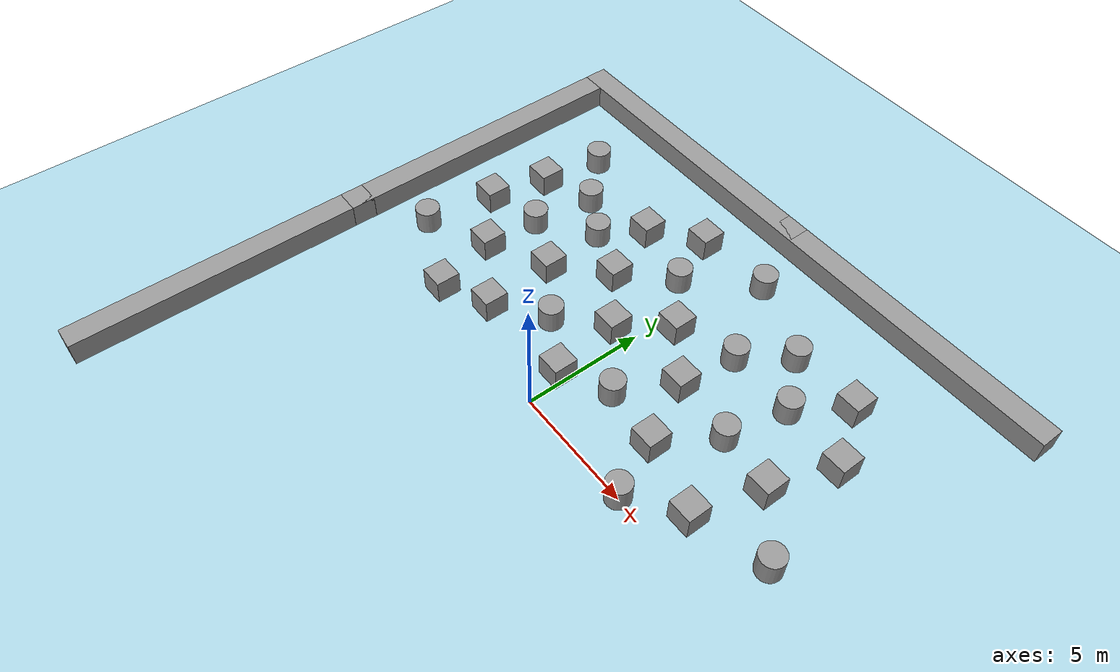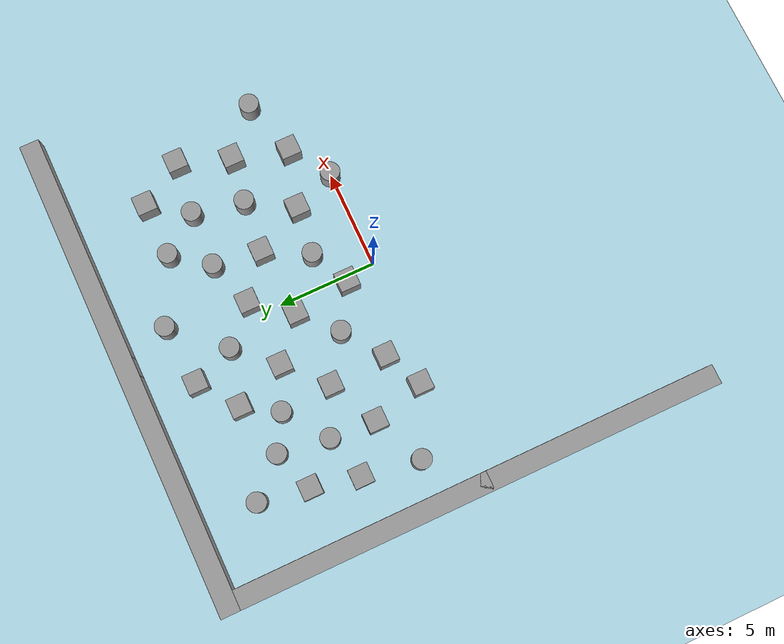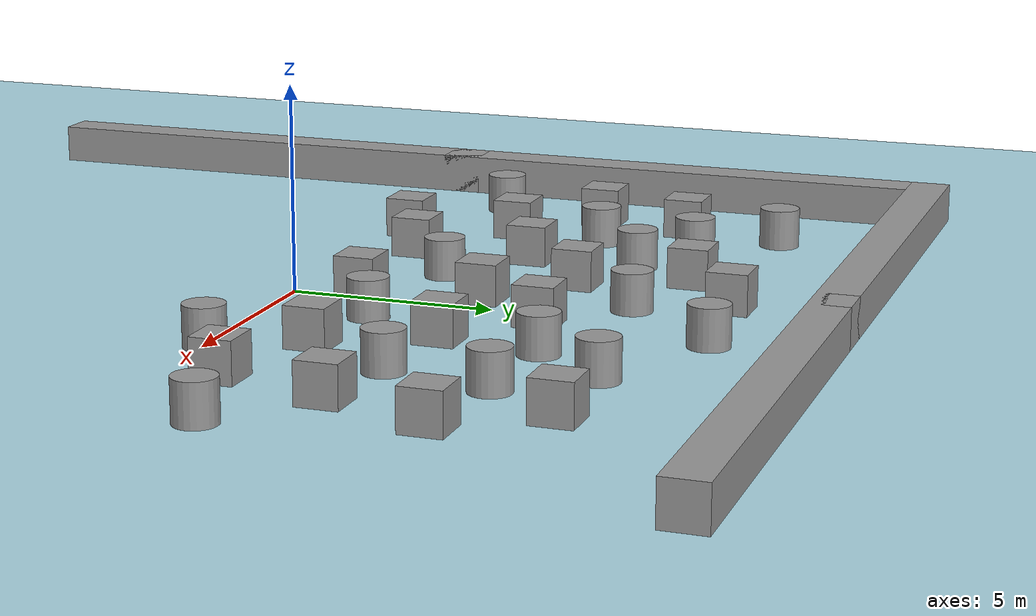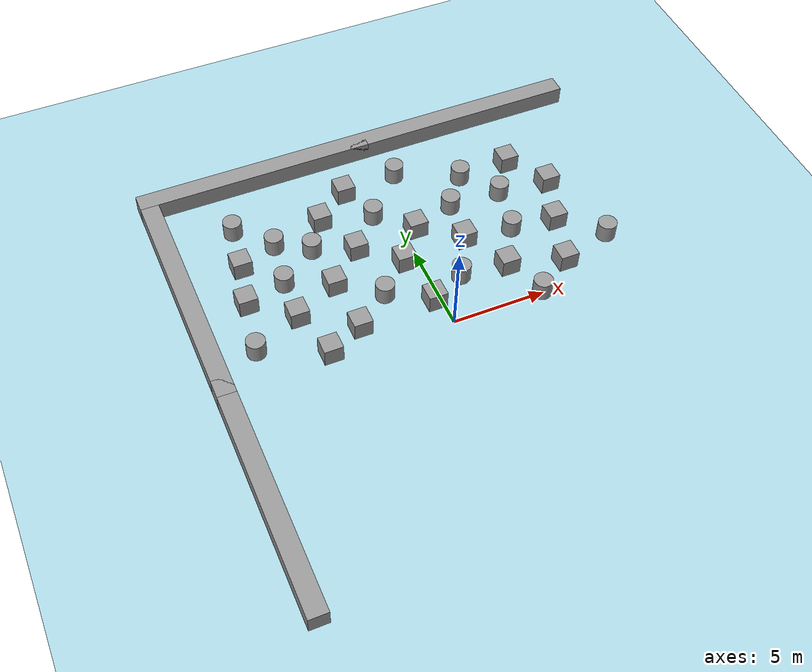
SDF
<sdf version="1.6">
 <world name="default">
  <model name="ground_plane">
   <static>1</static>
   <link name="link">
    <collision name="collision">
     <geometry><plane><normal>0 0 1</normal><size>100 100</size></plane></geometry>
     <surface><friction><ode><mu>100</mu><mu2>50</mu2></ode></friction></surface>
    </collision>
    <visual name="visual">
     <cast_shadows>0</cast_shadows>
     <geometry><plane><normal>0 0 1</normal><size>100 100</size></plane></geometry>
     <material>
      <script><name>Gazebo/Grey</name><uri>file://media/materials/scripts/gazebo.material</uri></script>
      <ambient>0.3 0.3 0.3 1</ambient>
      <diffuse>0.678431 0.847059 0.901961 1</diffuse>
      <specular>0.01 0.01 0.01 1</specular>
      <emissive>0 0 0 1</emissive>
      <shader type="vertex"><normal_map>__default__</normal_map></shader>
     </material>
    </visual>
   </link>
  </model>
  <model name="unit_box_0_3">
   <static>1</static>
   <pose>-6.42761 0.477228 0.499995 0 -1e-05 0</pose>
   <link name="link">
    <inertial>
     <mass>1</mass>
     <inertia>
      <ixx>0.166667</ixx>
      <ixy>0</ixy>
      <ixz>0</ixz>
      <iyy>0.166667</iyy>
      <iyz>0</iyz>
      <izz>0.166667</izz>
     </inertia>
    </inertial>
    <collision name="collision"><geometry><box><size>1 1 1</size></box></geometry></collision>
    <visual name="visual">
     <geometry><box><size>1 1 1</size></box></geometry>
     <material>
      <script><name>Gazebo/Grey</name><uri>file://media/materials/scripts/gazebo.material</uri></script>
     </material>
    </visual>
   </link>
  </model>
  <model name="unit_box_0_6">
   <static>1</static>
   <pose>-4.49525 1.40082 0.499995 0 -1e-05 0</pose>
   <link name="link">
    <inertial>
     <mass>1</mass>
     <inertia>
      <ixx>0.166667</ixx>
      <ixy>0</ixy>
      <ixz>0</ixz>
      <iyy>0.166667</iyy>
      <iyz>0</iyz>
      <izz>0.166667</izz>
     </inertia>
    </inertial>
    <collision name="collision"><geometry><box><size>1 1 1</size></box></geometry></collision>
    <visual name="visual">
     <geometry><box><size>1 1 1</size></box></geometry>
     <material>
      <script><name>Gazebo/Grey</name><uri>file://media/materials/scripts/gazebo.material</uri></script>
     </material>
    </visual>
   </link>
  </model>
  <model name="unit_box_0_7">
   <static>1</static>
   <pose>-7.14879 3.18436 0.499995 0 -1e-05 0</pose>
   <link name="link">
    <inertial>
     <mass>1</mass>
     <inertia>
      <ixx>0.166667</ixx>
      <ixy>0</ixy>
      <ixz>0</ixz>
      <iyy>0.166667</iyy>
      <iyz>0</iyz>
      <izz>0.166667</izz>
     </inertia>
    </inertial>
    <collision name="collision"><geometry><box><size>1 1 1</size></box></geometry></collision>
    <visual name="visual">
     <geometry><box><size>1 1 1</size></box></geometry>
     <material>
      <script><name>Gazebo/Grey</name><uri>file://media/materials/scripts/gazebo.material</uri></script>
     </material>
    </visual>
   </link>
  </model>
  <model name="unit_cylinder_0">
   <static>1</static>
   <pose>-2.53891 2.88091 0.499994 -3e-06 -1e-06 -0</pose>
   <link name="link">
    <inertial>
     <mass>1</mass>
     <inertia><ixx>0.145833</ixx><ixy>0</ixy><ixz>0</ixz><iyy>0.145833</iyy><iyz>0</iyz><izz>0.125</izz></inertia>
    </inertial>
    <collision name="collision">
     <geometry><cylinder><radius>0.5</radius><length>1</length></cylinder></geometry>
    </collision>
    <visual name="visual">
     <geometry><cylinder><radius>0.5</radius><length>1</length></cylinder></geometry>
     <material>
      <script><name>Gazebo/Grey</name><uri>file://media/materials/scripts/gazebo.material</uri></script>
     </material>
    </visual>
   </link>
  </model>
  <model name="unit_cylinder_4">
   <static>1</static>
   <pose>1.55377 2.54933 0.499994 -2e-06 0 0</pose>
   <link name="link">
    <inertial>
     <mass>1</mass>
     <inertia><ixx>0.145833</ixx><ixy>0</ixy><ixz>0</ixz><iyy>0.145833</iyy><iyz>0</iyz><izz>0.125</izz></inertia>
    </inertial>
    <collision name="collision">
     <geometry><cylinder><radius>0.5</radius><length>1</length></cylinder></geometry>
    </collision>
    <visual name="visual">
     <geometry><cylinder><radius>0.5</radius><length>1</length></cylinder></geometry>
     <material>
      <script><name>Gazebo/Grey</name><uri>file://media/materials/scripts/gazebo.material</uri></script>
     </material>
    </visual>
   </link>
  </model>
  <model name="unit_box_0_12">
   <static>1</static>
   <pose>4.02979 2.24405 0.499995 0 -1e-05 0</pose>
   <link name="link">
    <inertial>
     <mass>1</mass>
     <inertia>
      <ixx>0.166667</ixx>
      <ixy>0</ixy>
      <ixz>0</ixz>
      <iyy>0.166667</iyy>
      <iyz>0</iyz>
      <izz>0.166667</izz>
     </inertia>
    </inertial>
    <collision name="collision"><geometry><box><size>1 1 1</size></box></geometry></collision>
    <visual name="visual">
     <geometry><box><size>1 1 1</size></box></geometry>
     <material>
      <script><name>Gazebo/Grey</name><uri>file://media/materials/scripts/gazebo.material</uri></script>
     </material>
    </visual>
   </link>
  </model>
  <model name="unit_box_0_13">
   <static>1</static>
   <pose>-0.781742 4.49354 0.499995 0 -1e-05 0</pose>
   <link name="link">
    <inertial>
     <mass>1</mass>
     <inertia>
      <ixx>0.166667</ixx>
      <ixy>0</ixy>
      <ixz>0</ixz>
      <iyy>0.166667</iyy>
      <iyz>0</iyz>
      <izz>0.166667</izz>
     </inertia>
    </inertial>
    <collision name="collision"><geometry><box><size>1 1 1</size></box></geometry></collision>
    <visual name="visual">
     <geometry><box><size>1 1 1</size></box></geometry>
     <material>
      <script><name>Gazebo/Grey</name><uri>file://media/materials/scripts/gazebo.material</uri></script>
     </material>
    </visual>
   </link>
  </model>
  <model name="unit_box_0_14">
   <static>1</static>
   <pose>2.75981 4.75508 0.499995 0 -1e-05 0</pose>
   <link name="link">
    <inertial>
     <mass>1</mass>
     <inertia>
      <ixx>0.166667</ixx>
      <ixy>0</ixy>
      <ixz>0</ixz>
      <iyy>0.166667</iyy>
      <iyz>0</iyz>
      <izz>0.166667</izz>
     </inertia>
    </inertial>
    <collision name="collision"><geometry><box><size>1 1 1</size></box></geometry></collision>
    <visual name="visual">
     <geometry><box><size>1 1 1</size></box></geometry>
     <material>
      <script><name>Gazebo/Grey</name><uri>file://media/materials/scripts/gazebo.material</uri></script>
     </material>
    </visual>
   </link>
  </model>
  <model name="unit_box_0_15">
   <static>1</static>
   <pose>-0.382143 1.56916 0.499995 0 -1e-05 0</pose>
   <link name="link">
    <inertial>
     <mass>1</mass>
     <inertia>
      <ixx>0.166667</ixx>
      <ixy>0</ixy>
      <ixz>0</ixz>
      <iyy>0.166667</iyy>
      <iyz>0</iyz>
      <izz>0.166667</izz>
     </inertia>
    </inertial>
    <collision name="collision"><geometry><box><size>1 1 1</size></box></geometry></collision>
    <visual name="visual">
     <geometry><box><size>1 1 1</size></box></geometry>
     <material>
      <script><name>Gazebo/Grey</name><uri>file://media/materials/scripts/gazebo.material</uri></script>
     </material>
    </visual>
   </link>
  </model>
  <model name="unit_box_6">
   <static>1</static>
   <pose>-4.6902 4.39596 0.499995 -1e-05 0 0</pose>
   <link name="link">
    <inertial>
     <mass>1</mass>
     <inertia>
      <ixx>0.166667</ixx>
      <ixy>0</ixy>
      <ixz>0</ixz>
      <iyy>0.166667</iyy>
      <iyz>0</iyz>
      <izz>0.166667</izz>
     </inertia>
    </inertial>
    <collision name="collision"><geometry><box><size>1 1 1</size></box></geometry></collision>
    <visual name="visual">
     <geometry><box><size>1 1 1</size></box></geometry>
     <material>
      <script><name>Gazebo/Grey</name><uri>file://media/materials/scripts/gazebo.material</uri></script>
     </material>
    </visual>
   </link>
  </model>
  <model name="unit_cylinder_13">
   <static>1</static>
   <pose>-9.73945 1.97955 0.499994 -3e-06 -2e-06 0</pose>
   <link name="link">
    <inertial>
     <mass>1</mass>
     <inertia><ixx>0.145833</ixx><ixy>0</ixy><ixz>0</ixz><iyy>0.145833</iyy><iyz>0</iyz><izz>0.125</izz></inertia>
    </inertial>
    <collision name="collision">
     <geometry><cylinder><radius>0.5</radius><length>1</length></cylinder></geometry>
    </collision>
    <visual name="visual">
     <geometry><cylinder><radius>0.5</radius><length>1</length></cylinder></geometry>
     <material>
      <script><name>Gazebo/Grey</name><uri>file://media/materials/scripts/gazebo.material</uri></script>
     </material>
    </visual>
   </link>
  </model>
  <model name="unit_cylinder_15">
   <static>1</static>
   <pose>4.92905 0.050524 0.499994 -4e-06 -3e-06 -0</pose>
   <link name="link">
    <inertial>
     <mass>1</mass>
     <inertia><ixx>0.145833</ixx><ixy>0</ixy><ixz>0</ixz><iyy>0.145833</iyy><iyz>0</iyz><izz>0.125</izz></inertia>
    </inertial>
    <collision name="collision">
     <geometry><cylinder><radius>0.5</radius><length>1</length></cylinder></geometry>
    </collision>
    <visual name="visual">
     <geometry><cylinder><radius>0.5</radius><length>1</length></cylinder></geometry>
     <material>
      <script><name>Gazebo/Grey</name><uri>file://media/materials/scripts/gazebo.material</uri></script>
     </material>
    </visual>
   </link>
  </model>
  <model name="unit_cylinder_16">
   <static>1</static>
   <pose>5.38763 4.48866 0.499997 4e-06 3e-06 -0</pose>
   <link name="link">
    <inertial>
     <mass>1</mass>
     <inertia><ixx>0.145833</ixx><ixy>0</ixy><ixz>0</ixz><iyy>0.145833</iyy><iyz>0</iyz><izz>0.125</izz></inertia>
    </inertial>
    <collision name="collision">
     <geometry><cylinder><radius>0.5</radius><length>1</length></cylinder></geometry>
    </collision>
    <visual name="visual">
     <geometry><cylinder><radius>0.5</radius><length>1</length></cylinder></geometry>
     <material>
      <script><name>Gazebo/Grey</name><uri>file://media/materials/scripts/gazebo.material</uri></script>
     </material>
    </visual>
   </link>
  </model>
  <model name="unit_box_7">
   <static>1</static>
   <pose>0.691741 6.39006 0.499995 0 -1e-05 0</pose>
   <link name="link">
    <inertial>
     <mass>1</mass>
     <inertia>
      <ixx>0.166667</ixx>
      <ixy>0</ixy>
      <ixz>0</ixz>
      <iyy>0.166667</iyy>
      <iyz>0</iyz>
      <izz>0.166667</izz>
     </inertia>
    </inertial>
    <collision name="collision"><geometry><box><size>1 1 1</size></box></geometry></collision>
    <visual name="visual">
     <geometry><box><size>1 1 1</size></box></geometry>
     <material>
      <script><name>Gazebo/Grey</name><uri>file://media/materials/scripts/gazebo.material</uri></script>
     </material>
    </visual>
   </link>
  </model>
  <model name="unit_box_8">
   <static>1</static>
   <pose>-2.77827 6.19461 0.499995 -1e-05 0 0</pose>
   <link name="link">
    <inertial>
     <mass>1</mass>
     <inertia>
      <ixx>0.166667</ixx>
      <ixy>0</ixy>
      <ixz>0</ixz>
      <iyy>0.166667</iyy>
      <iyz>0</iyz>
      <izz>0.166667</izz>
     </inertia>
    </inertial>
    <collision name="collision"><geometry><box><size>1 1 1</size></box></geometry></collision>
    <visual name="visual">
     <geometry><box><size>1 1 1</size></box></geometry>
     <material>
      <script><name>Gazebo/Grey</name><uri>file://media/materials/scripts/gazebo.material</uri></script>
     </material>
    </visual>
   </link>
  </model>
  <model name="unit_box_11">
   <static>1</static>
   <pose>6.94282 1.40654 0.499995 -1e-05 0 0</pose>
   <link name="link">
    <inertial>
     <mass>1</mass>
     <inertia>
      <ixx>0.166667</ixx>
      <ixy>0</ixy>
      <ixz>0</ixz>
      <iyy>0.166667</iyy>
      <iyz>0</iyz>
      <izz>0.166667</izz>
     </inertia>
    </inertial>
    <collision name="collision"><geometry><box><size>1 1 1</size></box></geometry></collision>
    <visual name="visual">
     <geometry><box><size>1 1 1</size></box></geometry>
     <material>
      <script><name>Gazebo/Grey</name><uri>file://media/materials/scripts/gazebo.material</uri></script>
     </material>
    </visual>
   </link>
  </model>
  <model name="unit_cylinder_20">
   <static>1</static>
   <pose>-7.01754 5.4924 0.499996 4e-06 3e-06 -0</pose>
   <link name="link">
    <inertial>
     <mass>1</mass>
     <inertia><ixx>0.145833</ixx><ixy>0</ixy><ixz>0</ixz><iyy>0.145833</iyy><iyz>0</iyz><izz>0.125</izz></inertia>
    </inertial>
    <collision name="collision">
     <geometry><cylinder><radius>0.5</radius><length>1</length></cylinder></geometry>
    </collision>
    <visual name="visual">
     <geometry><cylinder><radius>0.5</radius><length>1</length></cylinder></geometry>
     <material>
      <script><name>Gazebo/Grey</name><uri>file://media/materials/scripts/gazebo.material</uri></script>
     </material>
    </visual>
   </link>
  </model>
  <model name="unit_cylinder_21">
   <static>1</static>
   <pose>-4.90283 7.07115 0.499992 -3e-06 2e-06 0</pose>
   <link name="link">
    <inertial>
     <mass>1</mass>
     <inertia><ixx>0.145833</ixx><ixy>0</ixy><ixz>0</ixz><iyy>0.145833</iyy><iyz>0</iyz><izz>0.125</izz></inertia>
    </inertial>
    <collision name="collision">
     <geometry><cylinder><radius>0.5</radius><length>1</length></cylinder></geometry>
    </collision>
    <visual name="visual">
     <geometry><cylinder><radius>0.5</radius><length>1</length></cylinder></geometry>
     <material>
      <script><name>Gazebo/Grey</name><uri>file://media/materials/scripts/gazebo.material</uri></script>
     </material>
    </visual>
   </link>
  </model>
  <model name="unit_box_15">
   <static>1</static>
   <pose>-9.24725 4.90723 0.499995 -1e-05 0 0</pose>
   <link name="link">
    <inertial>
     <mass>1</mass>
     <inertia>
      <ixx>0.166667</ixx>
      <ixy>0</ixy>
      <ixz>0</ixz>
      <iyy>0.166667</iyy>
      <iyz>0</iyz>
      <izz>0.166667</izz>
     </inertia>
    </inertial>
    <collision name="collision"><geometry><box><size>1 1 1</size></box></geometry></collision>
    <visual name="visual">
     <geometry><box><size>1 1 1</size></box></geometry>
     <material>
      <script><name>Gazebo/Grey</name><uri>file://media/materials/scripts/gazebo.material</uri></script>
     </material>
    </visual>
   </link>
  </model>
  <model name="unit_cylinder_22">
   <static>1</static>
   <pose>-1.04562 8.07341 0.499992 -3e-06 2e-06 0</pose>
   <link name="link">
    <inertial>
     <mass>1</mass>
     <inertia><ixx>0.145833</ixx><ixy>0</ixy><ixz>0</ixz><iyy>0.145833</iyy><iyz>0</iyz><izz>0.125</izz></inertia>
    </inertial>
    <collision name="collision">
     <geometry><cylinder><radius>0.5</radius><length>1</length></cylinder></geometry>
    </collision>
    <visual name="visual">
     <geometry><cylinder><radius>0.5</radius><length>1</length></cylinder></geometry>
     <material>
      <script><name>Gazebo/Grey</name><uri>file://media/materials/scripts/gazebo.material</uri></script>
     </material>
    </visual>
   </link>
  </model>
  <model name="unit_cylinder_23">
   <static>1</static>
   <pose>3.07014 7.17958 0.499998 3e-06 -2e-06 0</pose>
   <link name="link">
    <inertial>
     <mass>1</mass>
     <inertia><ixx>0.145833</ixx><ixy>0</ixy><ixz>0</ixz><iyy>0.145833</iyy><iyz>0</iyz><izz>0.125</izz></inertia>
    </inertial>
    <collision name="collision">
     <geometry><cylinder><radius>0.5</radius><length>1</length></cylinder></geometry>
    </collision>
    <visual name="visual">
     <geometry><cylinder><radius>0.5</radius><length>1</length></cylinder></geometry>
     <material>
      <script><name>Gazebo/Grey</name><uri>file://media/materials/scripts/gazebo.material</uri></script>
     </material>
    </visual>
   </link>
  </model>
  <model name="unit_cylinder_24">
   <static>1</static>
   <pose>5.9227 7.07435 0.499992 -3e-06 2e-06 0</pose>
   <link name="link">
    <inertial>
     <mass>1</mass>
     <inertia><ixx>0.145833</ixx><ixy>0</ixy><ixz>0</ixz><iyy>0.145833</iyy><iyz>0</iyz><izz>0.125</izz></inertia>
    </inertial>
    <collision name="collision">
     <geometry><cylinder><radius>0.5</radius><length>1</length></cylinder></geometry>
    </collision>
    <visual name="visual">
     <geometry><cylinder><radius>0.5</radius><length>1</length></cylinder></geometry>
     <material>
      <script><name>Gazebo/Grey</name><uri>file://media/materials/scripts/gazebo.material</uri></script>
     </material>
    </visual>
   </link>
  </model>
  <model name="unit_box_16">
   <static>1</static>
   <pose>7.73858 4.15099 0.499995 -1e-05 0 0</pose>
   <link name="link">
    <inertial>
     <mass>1</mass>
     <inertia>
      <ixx>0.166667</ixx>
      <ixy>0</ixy>
      <ixz>0</ixz>
      <iyy>0.166667</iyy>
      <iyz>0</iyz>
      <izz>0.166667</izz>
     </inertia>
    </inertial>
    <collision name="collision"><geometry><box><size>1 1 1</size></box></geometry></collision>
    <visual name="visual">
     <geometry><box><size>1 1 1</size></box></geometry>
     <material>
      <script><name>Gazebo/Grey</name><uri>file://media/materials/scripts/gazebo.material</uri></script>
     </material>
    </visual>
   </link>
  </model>
  <model name="unit_box_18">
   <static>1</static>
   <pose>8.66466 6.76499 0.499995 -1e-05 0 0</pose>
   <link name="link">
    <inertial>
     <mass>1</mass>
     <inertia>
      <ixx>0.166667</ixx>
      <ixy>0</ixy>
      <ixz>0</ixz>
      <iyy>0.166667</iyy>
      <iyz>0</iyz>
      <izz>0.166667</izz>
     </inertia>
    </inertial>
    <collision name="collision"><geometry><box><size>1 1 1</size></box></geometry></collision>
    <visual name="visual">
     <geometry><box><size>1 1 1</size></box></geometry>
     <material>
      <script><name>Gazebo/Grey</name><uri>file://media/materials/scripts/gazebo.material</uri></script>
     </material>
    </visual>
   </link>
  </model>
  <model name="unit_cylinder_25">
   <static>1</static>
   <pose>4.4672 8.96696 0.499993 -3e-06 2e-06 0</pose>
   <link name="link">
    <inertial>
     <mass>1</mass>
     <inertia><ixx>0.145833</ixx><ixy>0</ixy><ixz>0</ixz><iyy>0.145833</iyy><iyz>0</iyz><izz>0.125</izz></inertia>
    </inertial>
    <collision name="collision">
     <geometry><cylinder><radius>0.5</radius><length>1</length></cylinder></geometry>
    </collision>
    <visual name="visual">
     <geometry><cylinder><radius>0.5</radius><length>1</length></cylinder></geometry>
     <material>
      <script><name>Gazebo/Grey</name><uri>file://media/materials/scripts/gazebo.material</uri></script>
     </material>
    </visual>
   </link>
  </model>
  <model name="unit_cylinder_26">
   <static>1</static>
   <pose>1.2 10.5 0.499998 2e-06 -2e-06 -0</pose>
   <link name="link">
    <inertial>
     <mass>1</mass>
     <inertia><ixx>0.145833</ixx><ixy>0</ixy><ixz>0</ixz><iyy>0.145833</iyy><iyz>0</iyz><izz>0.125</izz></inertia>
    </inertial>
    <collision name="collision">
     <geometry><cylinder><radius>0.5</radius><length>1</length></cylinder></geometry>
    </collision>
    <visual name="visual">
     <geometry><cylinder><radius>0.5</radius><length>1</length></cylinder></geometry>
     <material>
      <script><name>Gazebo/Grey</name><uri>file://media/materials/scripts/gazebo.material</uri></script>
     </material>
    </visual>
   </link>
  </model>
  <model name="unit_box_19">
   <static>1</static>
   <pose>-3.8106 8.77669 0.499995 0 -1e-05 0</pose>
   <link name="link">
    <inertial>
     <mass>1</mass>
     <inertia>
      <ixx>0.166667</ixx>
      <ixy>0</ixy>
      <ixz>0</ixz>
      <iyy>0.166667</iyy>
      <iyz>0</iyz>
      <izz>0.166667</izz>
     </inertia>
    </inertial>
    <collision name="collision"><geometry><box><size>1 1 1</size></box></geometry></collision>
    <visual name="visual">
     <geometry><box><size>1 1 1</size></box></geometry>
     <material>
      <script><name>Gazebo/Grey</name><uri>file://media/materials/scripts/gazebo.material</uri></script>
     </material>
    </visual>
   </link>
  </model>
  <model name="unit_box_20">
   <static>1</static>
   <pose>7.27137 8.99362 0.499995 -1e-05 0 0</pose>
   <link name="link">
    <inertial>
     <mass>1</mass>
     <inertia>
      <ixx>0.166667</ixx>
      <ixy>0</ixy>
      <ixz>0</ixz>
      <iyy>0.166667</iyy>
      <iyz>0</iyz>
      <izz>0.166667</izz>
     </inertia>
    </inertial>
    <collision name="collision"><geometry><box><size>1 1 1</size></box></geometry></collision>
    <visual name="visual">
     <geometry><box><size>1 1 1</size></box></geometry>
     <material>
      <script><name>Gazebo/Grey</name><uri>file://media/materials/scripts/gazebo.material</uri></script>
     </material>
    </visual>
   </link>
  </model>
  <model name="unit_cylinder_29">
   <static>1</static>
   <pose>9.85292 2.2628 0.499998 2e-06 -2e-06 -0</pose>
   <link name="link">
    <inertial>
     <mass>1</mass>
     <inertia><ixx>0.145833</ixx><ixy>0</ixy><ixz>0</ixz><iyy>0.145833</iyy><iyz>0</iyz><izz>0.125</izz></inertia>
    </inertial>
    <collision name="collision">
     <geometry><cylinder><radius>0.5</radius><length>1</length></cylinder></geometry>
    </collision>
    <visual name="visual">
     <geometry><cylinder><radius>0.5</radius><length>1</length></cylinder></geometry>
     <material>
      <script><name>Gazebo/Grey</name><uri>file://media/materials/scripts/gazebo.material</uri></script>
     </material>
    </visual>
   </link>
  </model>
  <model name="unit_cylinder_31">
   <static>1</static>
   <pose>-6.63229 8.08266 0.499998 3e-06 4e-06 -0</pose>
   <link name="link">
    <inertial>
     <mass>1</mass>
     <inertia><ixx>0.145833</ixx><ixy>0</ixy><ixz>0</ixz><iyy>0.145833</iyy><iyz>0</iyz><izz>0.125</izz></inertia>
    </inertial>
    <collision name="collision">
     <geometry><cylinder><radius>0.5</radius><length>1</length></cylinder></geometry>
    </collision>
    <visual name="visual">
     <geometry><cylinder><radius>0.5</radius><length>1</length></cylinder></geometry>
     <material>
      <script><name>Gazebo/Grey</name><uri>file://media/materials/scripts/gazebo.material</uri></script>
     </material>
    </visual>
   </link>
  </model>
  <model name="unit_box_14_0">
   <static>1</static>
   <pose>-8.72975 7.31445 0.499995 0 -1e-05 0</pose>
   <link name="link">
    <inertial>
     <mass>1</mass>
     <inertia>
      <ixx>0.166667</ixx>
      <ixy>0</ixy>
      <ixz>0</ixz>
      <iyy>0.166667</iyy>
      <iyz>0</iyz>
      <izz>0.166667</izz>
     </inertia>
    </inertial>
    <collision name="collision"><geometry><box><size>1 1 1</size></box></geometry></collision>
    <visual name="visual">
     <geometry><box><size>1 1 1</size></box></geometry>
     <material>
      <script><name>Gazebo/Grey</name><uri>file://media/materials/scripts/gazebo.material</uri></script>
     </material>
    </visual>
   </link>
  </model>
  <model name="unit_cylinder_32">
   <static>1</static>
   <pose>-8.31284 9.8626 0.499998 3e-06 -4e-06 0</pose>
   <link name="link">
    <inertial>
     <mass>1</mass>
     <inertia><ixx>0.145833</ixx><ixy>0</ixy><ixz>0</ixz><iyy>0.145833</iyy><iyz>0</iyz><izz>0.125</izz></inertia>
    </inertial>
    <collision name="collision">
     <geometry><cylinder><radius>0.5</radius><length>1</length></cylinder></geometry>
    </collision>
    <visual name="visual">
     <geometry><cylinder><radius>0.5</radius><length>1</length></cylinder></geometry>
     <material>
      <script><name>Gazebo/Grey</name><uri>file://media/materials/scripts/gazebo.material</uri></script>
     </material>
    </visual>
   </link>
  </model>
  <model name="unit_box_14_1">
   <static>1</static>
   <pose>-1.89465 10.2232 0.499995 0 -1e-05 0</pose>
   <link name="link">
    <inertial>
     <mass>1</mass>
     <inertia>
      <ixx>0.166667</ixx>
      <ixy>0</ixy>
      <ixz>0</ixz>
      <iyy>0.166667</iyy>
      <iyz>0</iyz>
      <izz>0.166667</izz>
     </inertia>
    </inertial>
    <collision name="collision"><geometry><box><size>1 1 1</size></box></geometry></collision>
    <visual name="visual">
     <geometry><box><size>1 1 1</size></box></geometry>
     <material>
      <script><name>Gazebo/Grey</name><uri>file://media/materials/scripts/gazebo.material</uri></script>
     </material>
    </visual>
   </link>
  </model>
  <model name="25m_wall_clone">
   <static>1</static>
   <link name="link">
    <inertial>
     <mass>1</mass>
     <inertia>
      <ixx>0.166667</ixx>
      <ixy>0</ixy>
      <ixz>0</ixz>
      <iyy>0.166667</iyy>
      <iyz>0</iyz>
      <izz>0.166667</izz>
     </inertia>
    </inertial>
    <visual name="ModelPreview_1::link::visual_1">
     <geometry><box><size>1 1 1</size></box></geometry>
     <material>
      <script><name>Gazebo/Grey</name><uri>file://media/materials/scripts/gazebo.material</uri></script>
      <ambient>0.3 0.3 0.3 1</ambient>
      <diffuse>0.7 0.7 0.7 1</diffuse>
      <specular>0.01 0.01 0.01 1</specular>
      <emissive>0 0 0 1</emissive>
      <shader type="vertex"><normal_map>__default__</normal_map></shader>
     </material>
    </visual>
    <visual name="visual">
     <geometry><box><size>25 1 1</size></box></geometry>
     <material>
      <script><name>Gazebo/Grey</name><uri>file://media/materials/scripts/gazebo.material</uri></script>
      <ambient>0.3 0.3 0.3 1</ambient>
      <diffuse>0.7 0.7 0.7 1</diffuse>
      <specular>0.01 0.01 0.01 1</specular>
      <emissive>0 0 0 1</emissive>
      <shader type="vertex"><normal_map>__default__</normal_map></shader>
     </material>
    </visual>
    <collision name="collision">
     <geometry><box><size>25 1 1</size></box></geometry>
     <surface>
      <friction>
       <ode><mu>1</mu><mu2>1</mu2><fdir1>0 0 0</fdir1><slip1>0</slip1><slip2>0</slip2></ode>
       <torsional>
        <coefficient>1</coefficient>
        <patch_radius>0</patch_radius>
        <surface_radius>0</surface_radius>
        <use_patch_radius>1</use_patch_radius>
        <ode><slip>0</slip></ode>
       </torsional>
      </friction>
      <bounce><restitution_coefficient>0</restitution_coefficient><threshold>1e+06</threshold></bounce>
      <contact>
       <collide_without_contact>0</collide_without_contact>
       <collide_without_contact_bitmask>1</collide_without_contact_bitmask>
       <collide_bitmask>1</collide_bitmask>
       <ode>
        <soft_cfm>0</soft_cfm>
        <soft_erp>0.2</soft_erp>
        <kp>1e+13</kp>
        <kd>1</kd>
        <max_vel>0.01</max_vel>
        <min_depth>0</min_depth>
       </ode>
       <bullet>
        <split_impulse>1</split_impulse>
        <split_impulse_penetration_threshold>-0.01</split_impulse_penetration_threshold>
        <soft_cfm>0</soft_cfm>
        <soft_erp>0.2</soft_erp>
        <kp>1e+13</kp>
        <kd>1</kd>
       </bullet>
      </contact>
     </surface>
    </collision>
   </link>
   <pose>0 13 0.5 0 -0 0</pose>
  </model>
  <model name="25m_wall_clone_0_clone">
   <static>1</static>
   <link name="link">
    <inertial>
     <mass>1</mass>
     <inertia>
      <ixx>0.166667</ixx>
      <ixy>0</ixy>
      <ixz>0</ixz>
      <iyy>0.166667</iyy>
      <iyz>0</iyz>
      <izz>0.166667</izz>
     </inertia>
    </inertial>
    <visual name="ModelPreview_1::link::visual_1">
     <geometry><box><size>1 1 1</size></box></geometry>
     <material>
      <script><name>Gazebo/Grey</name><uri>file://media/materials/scripts/gazebo.material</uri></script>
      <ambient>0.3 0.3 0.3 1</ambient>
      <diffuse>0.7 0.7 0.7 1</diffuse>
      <specular>0.01 0.01 0.01 1</specular>
      <emissive>0 0 0 1</emissive>
      <shader type="vertex"><normal_map>__default__</normal_map></shader>
     </material>
    </visual>
    <visual name="visual">
     <geometry><box><size>25 1 1</size></box></geometry>
     <material>
      <script><name>Gazebo/Grey</name><uri>file://media/materials/scripts/gazebo.material</uri></script>
      <ambient>0.3 0.3 0.3 1</ambient>
      <diffuse>0.7 0.7 0.7 1</diffuse>
      <specular>0.01 0.01 0.01 1</specular>
      <emissive>0 0 0 1</emissive>
      <shader type="vertex"><normal_map>__default__</normal_map></shader>
     </material>
    </visual>
    <collision name="collision">
     <geometry><box><size>25 1 1</size></box></geometry>
     <surface>
      <friction>
       <ode><mu>1</mu><mu2>1</mu2><fdir1>0 0 0</fdir1><slip1>0</slip1><slip2>0</slip2></ode>
       <torsional>
        <coefficient>1</coefficient>
        <patch_radius>0</patch_radius>
        <surface_radius>0</surface_radius>
        <use_patch_radius>1</use_patch_radius>
        <ode><slip>0</slip></ode>
       </torsional>
      </friction>
      <bounce><restitution_coefficient>0</restitution_coefficient><threshold>1e+06</threshold></bounce>
      <contact>
       <collide_without_contact>0</collide_without_contact>
       <collide_without_contact_bitmask>1</collide_without_contact_bitmask>
       <collide_bitmask>1</collide_bitmask>
       <ode>
        <soft_cfm>0</soft_cfm>
        <soft_erp>0.2</soft_erp>
        <kp>1e+13</kp>
        <kd>1</kd>
        <max_vel>0.01</max_vel>
        <min_depth>0</min_depth>
       </ode>
       <bullet>
        <split_impulse>1</split_impulse>
        <split_impulse_penetration_threshold>-0.01</split_impulse_penetration_threshold>
        <soft_cfm>0</soft_cfm>
        <soft_erp>0.2</soft_erp>
        <kp>1e+13</kp>
        <kd>1</kd>
       </bullet>
      </contact>
     </surface>
    </collision>
   </link>
   <pose>-12 0 0.5 0 -0 1.5708</pose>
  </model>
 </world>
</sdf>
